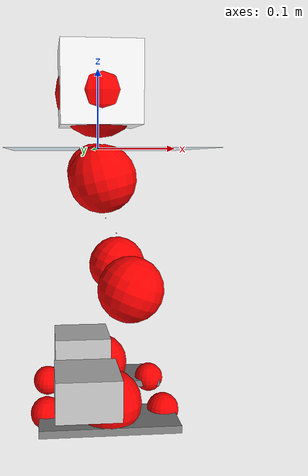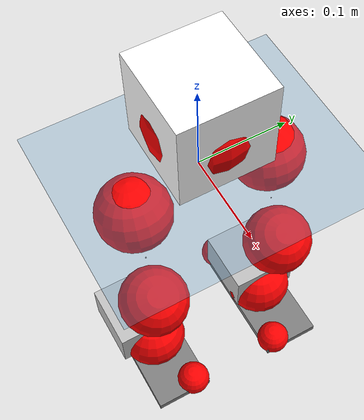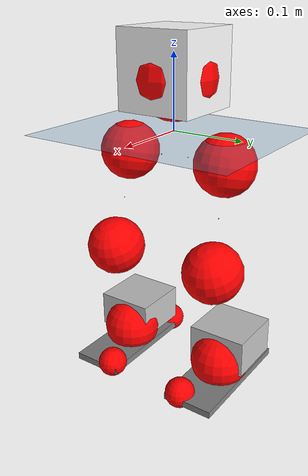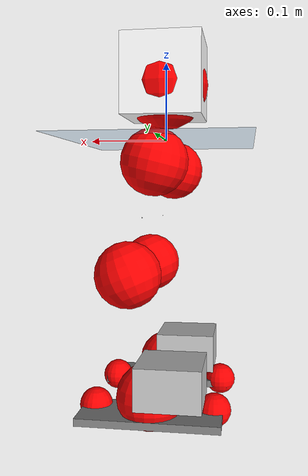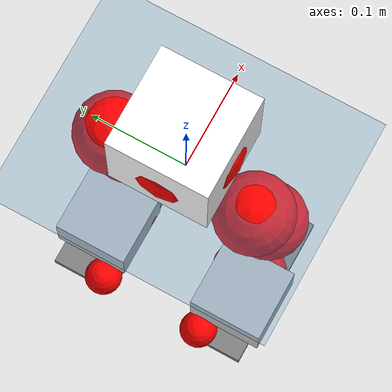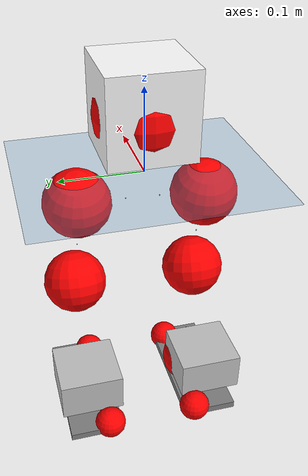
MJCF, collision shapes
<mujoco model="pi_12dof_release_v1">
  <compiler angle="radian" assetdir="assets" balanceinertia="true" inertiafromgeom="false"/>

  <option timestep="0.005" density="1.2" viscosity="2e-05"/>

  <size nkey="1"/>

  <visual>
    <quality shadowsize="8192"/>
    <map shadowclip="0.5"/>
  </visual>

  <default>
    <default class="/">
      <joint armature="0.01" damping="0.01" frictionloss="0.01"/>
      <geom contype="0" conaffinity="0" group="1" solref="-1000 -80"/>
      <site size="0.01 0.005 0.005" group="5"/>
      <general forcelimited="true" biastype="affine" gainprm="20" biasprm="0 -20 -0.5"/>
      <default class="foot">
        <geom size="0.0845 0.036 0.005" type="box" condim="6" group="4" priority="1" friction="0.9 0.2 0.2" solimp="0.015 1 0.005"/>
      </default>
      <default class="reward_collision_sphere">
        <geom group="5" rgba="1 0 0 1"/>
      </default>
    </default>
  </default>

  <asset>
    <texture type="skybox" colorspace="auto" name="//unnamed_texture_0" builtin="gradient" rgb1="0.95 0.95 0.95" rgb2="0.95 0.95 0.95" width="100" height="600"/>
    <texture type="2d" colorspace="auto" name="texplane" builtin="checker" rgb1="0.345 0.575 0.748" rgb2="0.345 0.575 0.748" markrgb="1 1 1" width="512" height="512"/>
    <material name="MatPlane" class="/" texture="texplane" texuniform="true" texrepeat="2 2" specular="0.9"/>
    <mesh name="baselink_1" class="/" file="baselink_1.STL"/>
    <mesh name="r_hip_pitch_link" class="/" file="r_hip_pitch_link.STL"/>
    <mesh name="r_hip_roll_link" class="/" file="r_hip_roll_link.STL"/>
    <mesh name="r_thigh_link" class="/" file="r_thigh_link.STL"/>
    <mesh name="r_calf_link" class="/" file="r_calf_link.STL"/>
    <mesh name="r_ankle_pitch_link" class="/" file="r_ankle_pitch_link.STL"/>
    <mesh name="r_ankle_roll_link" class="/" file="r_ankle_roll_link.STL"/>
    <mesh name="l_hip_pitch_link" class="/" file="l_hip_pitch_link.STL"/>
    <mesh name="l_hip_roll_link" class="/" file="l_hip_roll_link.STL"/>
    <mesh name="l_thigh_link" class="/" file="l_thigh_link.STL"/>
    <mesh name="l_calf_link" class="/" file="l_calf_link.STL"/>
    <mesh name="l_ankle_pitch_link" class="/" file="l_ankle_pitch_link.STL"/>
    <mesh name="l_ankle_roll_link" class="/" file="l_ankle_roll_link.STL"/>
  </asset>

  <worldbody>
    <geom name="floor" class="/" size="100 100 0.125" type="plane" group="0" material="MatPlane"/>
    <light name="toplight_shadow" class="/" pos="0 0 5" dir="0.0990148 0.0990148 -0.990148" type="directional" ambient="0.04 0.04 0.04" diffuse="0.55 0.55 0.55" specular="0.12 0.12 0.12"/>
    <light name="toplight_fill" class="/" pos="0 0 5" dir="0.0990148 0.0990148 -0.990148" type="directional" castshadow="false" ambient="0.04 0.04 0.04" diffuse="0.3 0.3 0.3" specular="0.08 0.08 0.08"/>
    <body name="trunk" pos="0.00128656 0.00240956 0.000969952" quat="1 0.000427353 -0.000338887 0.000142663">
      <inertial pos="0.00314962 -0.00150471 0.0397512" quat="0.693099 -0.00253039 0.00324817 0.720831" mass="2.30141" diaginertia="0.016083 0.00801567 0.00377906"/>
      <joint name="//unnamed_joint_0" type="free"/>
      <geom name="//unnamed_geom_1" class="/" type="mesh" density="0" rgba="1 1 1 1" mesh="baselink_1"/>
      <geom name="//unnamed_geom_2" class="/" size="0.0507505 0.0507505 0.0507505" pos="0 0 0.0785744" type="box" rgba="1 1 1 1"/>
      <geom name="//unnamed_geom_3" class="reward_collision_sphere" size="0.0558255" pos="0 0 0.0687526"/>
      <site name="imu" class="/" pos="0.00743911 0.00137334 -0.00174855" size="0.0101501"/>
      <camera name="track" class="/" pos="0 -1.93345 0" quat="0.707107 0.707107 0 0" mode="trackcom"/>
      <camera name="ego_camera" class="/" pos="0.0822093 0 0.176792" quat="-0.5 -0.5 0.5 0.5"/>
      <body name="r_hip_pitch_link" pos="-0.000355921 -0.0214904 -0.0348806" quat="0.992262 -0.000562563 -0.124162 -6.27436e-05">
        <inertial pos="0.000334876 -0.0570648 0.000259577" quat="-0.0203097 0.707081 -0.0280612 0.706283" mass="0.387269" diaginertia="0.000172155 8.11399e-05 7.72277e-05"/>
        <joint name="r_hip_pitch_joint" class="/" pos="0 0 0" axis="-0.00395242 -0.999979 0.00510546" range="-1.73566 1.3021" armature="0.0101087" damping="0.0135137" frictionloss="0.0100364"/>
        <geom name="//unnamed_geom_4" class="/" type="mesh" density="0" rgba="0.75294 0.75294 0.75294 1" mesh="r_hip_pitch_link"/>
        <geom name="//unnamed_geom_5" class="/" size="0.000507505 0.000507505 0.000507505" type="box" rgba="0.75294 0.75294 0.75294 1"/>
        <body name="r_hip_roll_link" pos="-0.00265376 -0.0543969 -0.00186444" quat="0.999999 -0.000893146 0.00109823 -0.000166653">
          <inertial pos="-0.0013772 -0.000572079 -0.0596818" quat="0.710244 -0.0707138 -0.0911687 0.694436" mass="0.390707" diaginertia="0.000510237 0.000228364 0.000115375"/>
          <joint name="r_hip_roll_joint" class="/" pos="0 0 0" axis="-0.999949 0.000659837 0.0101025" stiffness="0.00180318" range="-0.126193 0.526923" armature="0.0113637" damping="0" frictionloss="0.00891041"/>
          <geom name="//unnamed_geom_6" class="/" type="mesh" density="0" rgba="0.75294 0.75294 0.75294 1" mesh="r_hip_roll_link"/>
          <geom name="//unnamed_geom_7" class="/" size="0.000507505 0.000507505 0.000507505" type="box" rgba="0.75294 0.75294 0.75294 1"/>
          <geom name="//unnamed_geom_8" class="reward_collision_sphere" size="0.0406004"/>
          <body name="r_thigh_link" pos="0.00012705 0.000254257 -0.0667777" quat="0.999999 -0.000261513 0.000650008 -0.0008356">
            <inertial pos="0.00305585 -0.000749832 -0.0471184" quat="0.735228 0.677816 0.000446301 0.00222784" mass="0.126194" diaginertia="0.00019877 8.31582e-05 5.35834e-05"/>
            <joint name="r_thigh_joint" class="/" pos="0 0 0" axis="0.0159758 -0.000551504 -0.999872" stiffness="0.00762647" range="-0.252765 0.604684" armature="0.0104017" damping="0.000689633" frictionloss="0.00877783"/>
            <geom name="//unnamed_geom_9" class="/" type="mesh" density="0" rgba="0.75294 0.75294 0.75294 1" mesh="r_thigh_link"/>
            <geom name="//unnamed_geom_10" class="/" size="0.000507505 0.000507505 0.000507505" type="box" rgba="0.75294 0.75294 0.75294 1"/>
            <body name="r_calf_link" pos="0.00010648 -0.00322737 -0.0704948" quat="0.947742 0.000148711 0.319036 0.000518205">
              <inertial pos="1.51861e-05 0.00114554 -0.0693274" quat="0.999859 -0.0128964 -0.00966361 0.00463711" mass="0.854606" diaginertia="0.00567952 0.00287506 0.000160945"/>
              <joint name="r_calf_joint" class="/" pos="0 0 0" axis="-0.00303983 -0.999995 -0.000613332" range="-1.63325 0.650213" armature="0.0114646" damping="0.00466734" frictionloss="0.0101019"/>
              <geom name="//unnamed_geom_11" class="/" type="mesh" density="0" rgba="0.75294 0.75294 0.75294 1" mesh="r_calf_link"/>
              <geom name="//unnamed_geom_12" class="/" size="0.000507505 0.000507505 0.000507505" type="box" rgba="0.75294 0.75294 0.75294 1"/>
              <geom name="//unnamed_geom_13" class="reward_collision_sphere" size="0.0406004"/>
              <body name="r_ankle_pitch_link" pos="-0.000584099 -0.00214872 -0.135014" quat="0.980067 9.89945e-05 -0.198669 -9.70417e-05">
                <inertial pos="0.00244455 0.00274588 0.000891991" quat="0.0022195 0.70755 -0.00189442 0.706657" mass="0.188943" diaginertia="0.000492122 0.000192119 0.000112166"/>
                <joint name="r_ankle_pitch_joint" class="/" pos="0 0 0" axis="-0.00224277 -0.999889 -0.0147397" stiffness="0.00874481" range="-1.24575 0.496067" armature="0.00936069" damping="0.0209829" frictionloss="0.00888704"/>
                <geom name="//unnamed_geom_14" class="/" type="mesh" density="0" rgba="0.75294 0.75294 0.75294 1" mesh="r_ankle_pitch_link"/>
                <geom name="//unnamed_geom_15" class="/" size="0.0395854 0.0406004 0.0253752" type="box" rgba="0.75294 0.75294 0.75294 1"/>
                <body name="r_ankle_roll_link" pos="0.0825032 0.00580996 0.00149369" quat="1 4.26126e-05 -1.60844e-06 2.01591e-05">
                  <inertial pos="-0.026733 -0.00247381 -0.0124672" quat="0.56029 0.429802 0.433314 0.559986" mass="0.530831" diaginertia="0.00185473 0.000888984 0.00025942"/>
                  <joint name="r_ankle_roll_joint" class="/" pos="0 0 0" axis="-1 -6.66797e-05 -0.000184403" range="-0.145157 0.153826" armature="0.0108008" damping="0.00844391" frictionloss="0.0101536"/>
                  <geom name="//unnamed_geom_16" class="/" type="mesh" density="0" rgba="0.75294 0.75294 0.75294 1" mesh="r_ankle_roll_link"/>
                  <geom name="//unnamed_geom_17" class="/" type="mesh" rgba="0.75294 0.75294 0.75294 1" mesh="r_ankle_roll_link"/>
                  <geom name="right_foot" class="foot" size="0.0855718 0.0349911 0.00470881" pos="-0.0559023 0 -0.0432159"/>
                  <geom name="//unnamed_geom_19" class="reward_collision_sphere" size="0.0406004" pos="-0.0548062 0 -0.0196436"/>
                  <geom name="//unnamed_geom_20" class="reward_collision_sphere" size="0.0203002" pos="0.0164419 0.0193345 -0.0392872"/>
                  <geom name="//unnamed_geom_21" class="reward_collision_sphere" size="0.0203002" pos="-0.131535 0.0193345 -0.0392872"/>
                  <site name="right_foot" class="foot" pos="-0.0559023 0 -0.0432159" size="0.0101501"/>
                </body>
              </body>
            </body>
          </body>
        </body>
      </body>
      <body name="l_hip_pitch_link" pos="-0.00128829 0.019948 -0.0326872" quat="0.992205 -3.71417e-05 -0.124618 0.000333544">
        <inertial pos="0.00156387 0.0528995 0.000234854" quat="-0.0395422 0.700236 0.0292656 0.712215" mass="0.391374" diaginertia="0.000198439 8.84431e-05 8.96923e-05"/>
        <joint name="l_hip_pitch_joint" class="/" pos="0 0 0" axis="0.00523825 0.999985 -0.00133757" stiffness="0.00163111" range="-1.26569 1.75055" armature="0.0100138" damping="0.0174449" frictionloss="0.0115508"/>
        <geom name="//unnamed_geom_22" class="/" type="mesh" density="0" rgba="0.75294 0.75294 0.75294 1" mesh="l_hip_pitch_link"/>
        <geom name="//unnamed_geom_23" class="/" size="0.000507505 0.000507505 0.000507505" type="box" rgba="0.75294 0.75294 0.75294 1"/>
        <body name="l_hip_roll_link" pos="0.00326529 0.0567877 -0.000922139" quat="0.999999 0.000488475 9.61195e-05 -0.00121225">
          <inertial pos="0.000509505 0.000362456 -0.0607371" quat="0.691682 -0.0728439 -0.0796132 0.714095" mass="0.422745" diaginertia="0.000525626 0.00023852 0.00012144"/>
          <joint name="l_hip_roll_joint" class="/" pos="0 0 0" axis="-0.999925 -0.00599854 -0.0107031" range="-0.493987 0.168223" armature="0.0111733" damping="0" frictionloss="0.00872422"/>
          <geom name="//unnamed_geom_24" class="/" type="mesh" density="0" rgba="0.75294 0.75294 0.75294 1" mesh="l_hip_roll_link"/>
          <geom name="//unnamed_geom_25" class="/" size="0.000507505 0.000507505 0.000507505" type="box" rgba="0.75294 0.75294 0.75294 1"/>
          <geom name="//unnamed_geom_26" class="reward_collision_sphere" size="0.0406004"/>
          <body name="l_thigh_link" pos="-0.0022201 0.00115336 -0.0677575" quat="1 5.59741e-05 -3.94723e-05 -6.33936e-05">
            <inertial pos="0.000311191 -0.0017424 -0.0474093" quat="0.669487 0.742733 0.0115346 -0.00151095" mass="0.116728" diaginertia="0.000200163 7.75243e-05 5.26464e-05"/>
            <joint name="l_thigh_joint" class="/" pos="0 0 0" axis="0.00645949 -0.00545941 -0.999964" range="-0.613322 0.310961" armature="0.0103543" damping="0" frictionloss="0.00975384"/>
            <geom name="//unnamed_geom_27" class="/" type="mesh" density="0" rgba="0.75294 0.75294 0.75294 1" mesh="l_thigh_link"/>
            <geom name="//unnamed_geom_28" class="/" size="0.000507505 0.000507505 0.000507505" type="box" rgba="0.75294 0.75294 0.75294 1"/>
            <body name="l_calf_link" pos="-0.000779972 0.00317498 -0.0705021" quat="0.947564 -0.000788184 0.319564 -0.000593509">
              <inertial pos="0.00296003 0.00592312 -0.0693757" quat="0.999984 0.00441921 0.00124736 0.00334735" mass="0.844442" diaginertia="0.00574218 0.00304051 0.000164303"/>
              <joint name="l_calf_joint" class="/" pos="0 0 0" axis="0.000444581 0.999983 0.00587313" range="-0.598662 1.70059" armature="0.010283" damping="0.00287564" frictionloss="0.00924081"/>
              <geom name="//unnamed_geom_29" class="/" type="mesh" density="0" rgba="0.75294 0.75294 0.75294 1" mesh="l_calf_link"/>
              <geom name="//unnamed_geom_30" class="/" size="0.000507505 0.000507505 0.000507505" type="box" rgba="0.75294 0.75294 0.75294 1"/>
              <geom name="//unnamed_geom_31" class="reward_collision_sphere" size="0.0406004"/>
              <body name="l_ankle_pitch_link" pos="0.000948263 2.99408e-05 -0.136787" quat="0.980165 0.000662557 -0.198182 0.000846703">
                <inertial pos="0.0072136 0.000125415 0.00137565" quat="-0.00189546 0.707509 0.000670542 0.706701" mass="0.181017" diaginertia="0.000491841 0.000191284 0.000108738"/>
                <joint name="l_ankle_pitch_joint" class="/" pos="0 0 0" axis="-0.00359971 0.999937 0.0106309" stiffness="0.00688994" range="-0.453769 1.35722" armature="0.00926959" damping="0.000774144" frictionloss="0.0103965"/>
                <geom name="//unnamed_geom_32" class="/" type="mesh" density="0" rgba="0.75294 0.75294 0.75294 1" mesh="l_ankle_pitch_link"/>
                <geom name="//unnamed_geom_33" class="/" size="0.0395854 0.0406004 0.0253752" type="box" rgba="0.75294 0.75294 0.75294 1"/>
                <body name="l_ankle_roll_link" pos="0.0810704 -0.000947343 -0.000453857" quat="1 -8.84008e-05 9.30353e-05 -0.00023233">
                  <inertial pos="-0.0276587 0.000158126 -0.0135842" quat="0.556523 0.429319 0.436453 0.561673" mass="0.559489" diaginertia="0.00174822 0.000896461 0.000262712"/>
                  <joint name="l_ankle_roll_joint" class="/" pos="0 0 0" axis="-0.999957 0.00743803 -0.00555495" stiffness="0.00264572" range="-0.135508 0.0984726" armature="0.01003" damping="0.0126977" frictionloss="0.0108692"/>
                  <geom name="//unnamed_geom_34" class="/" type="mesh" density="0" rgba="0.75294 0.75294 0.75294 1" mesh="l_ankle_roll_link"/>
                  <geom name="//unnamed_geom_35" class="/" type="mesh" rgba="0.75294 0.75294 0.75294 1" mesh="l_ankle_roll_link"/>
                  <geom name="left_foot" class="foot" size="0.0861188 0.0352316 0.00455061" pos="-0.0559023 0 -0.0432159"/>
                  <geom name="//unnamed_geom_37" class="reward_collision_sphere" size="0.0406004" pos="-0.0548062 0 -0.0196436"/>
                  <geom name="//unnamed_geom_38" class="reward_collision_sphere" size="0.0203002" pos="0.0164419 -0.0193345 -0.0392872"/>
                  <geom name="//unnamed_geom_39" class="reward_collision_sphere" size="0.0203002" pos="-0.131535 -0.0193345 -0.0392872"/>
                  <site name="left_foot" class="foot" pos="-0.0559023 0 -0.0432159" size="0.0101501"/>
                </body>
              </body>
            </body>
          </body>
        </body>
      </body>
    </body>
  </worldbody>

  <contact>
    <pair class="/" geom1="floor" geom2="right_foot" name="//unnamed_contact_1"/>
    <pair class="/" geom1="floor" geom2="left_foot" name="//unnamed_contact_0"/>
  </contact>

  <actuator>
    <general name="r_hip_pitch_joint" class="/" joint="r_hip_pitch_joint" forcerange="-23.5247 23.5247" gainprm="20.0138" biasprm="0 -20.0138 -0.503483"/>
    <general name="r_hip_roll_joint" class="/" joint="r_hip_roll_joint" forcerange="-22.161 22.161" gainprm="20.0138" biasprm="0 -20.0138 -0.503483"/>
    <general name="r_thigh_joint" class="/" joint="r_thigh_joint" forcerange="-19.4906 19.4906" gainprm="20.0138" biasprm="0 -20.0138 -0.503483"/>
    <general name="r_calf_joint" class="/" joint="r_calf_joint" forcerange="-21.4659 21.4659" gainprm="20.0138" biasprm="0 -20.0138 -0.503483"/>
    <general name="r_ankle_pitch_joint" class="/" joint="r_ankle_pitch_joint" forcerange="-20.1633 20.1633" gainprm="20.0138" biasprm="0 -20.0138 -0.503483"/>
    <general name="r_ankle_roll_joint" class="/" joint="r_ankle_roll_joint" forcerange="-22.6726 22.6726" gainprm="20.0138" biasprm="0 -20.0138 -0.503483"/>
    <general name="l_hip_pitch_joint" class="/" joint="l_hip_pitch_joint" forcerange="-21.1829 21.1829" gainprm="20.0138" biasprm="0 -20.0138 -0.503483"/>
    <general name="l_hip_roll_joint" class="/" joint="l_hip_roll_joint" forcerange="-19.9135 19.9135" gainprm="20.0138" biasprm="0 -20.0138 -0.503483"/>
    <general name="l_thigh_joint" class="/" joint="l_thigh_joint" forcerange="-23.385 23.385" gainprm="20.0138" biasprm="0 -20.0138 -0.503483"/>
    <general name="l_calf_joint" class="/" joint="l_calf_joint" forcerange="-21.0799 21.0799" gainprm="20.0138" biasprm="0 -20.0138 -0.503483"/>
    <general name="l_ankle_pitch_joint" class="/" joint="l_ankle_pitch_joint" forcerange="-20.8897 20.8897" gainprm="20.0138" biasprm="0 -20.0138 -0.503483"/>
    <general name="l_ankle_roll_joint" class="/" joint="l_ankle_roll_joint" forcerange="-23.5472 23.5472" gainprm="20.0138" biasprm="0 -20.0138 -0.503483"/>
  </actuator>

  <sensor>
    <gyro site="imu" name="imu_angular_velocity"/>
    <velocimeter site="imu" name="imu_linear_velocity"/>
    <framelinvel objtype="site" objname="left_foot" name="left_foot_global_linear_velocity"/>
    <framelinvel objtype="site" objname="right_foot" name="right_foot_global_linear_velocity"/>
  </sensor>

  <keyframe>
    <key name="home" qpos="0 0 0.291 1 0 0 0 0.4 0 0 -0.8 0.4 0 -0.4 0 0 0.8 -0.4 0"/>
  </keyframe>
</mujoco>
